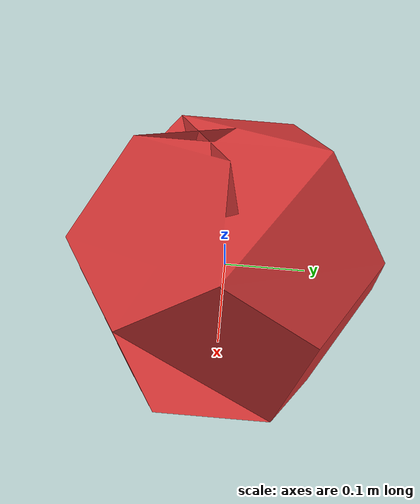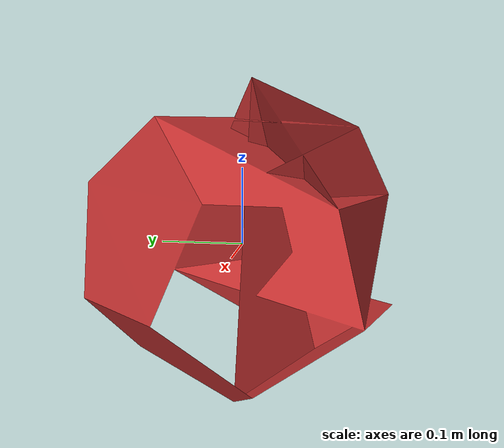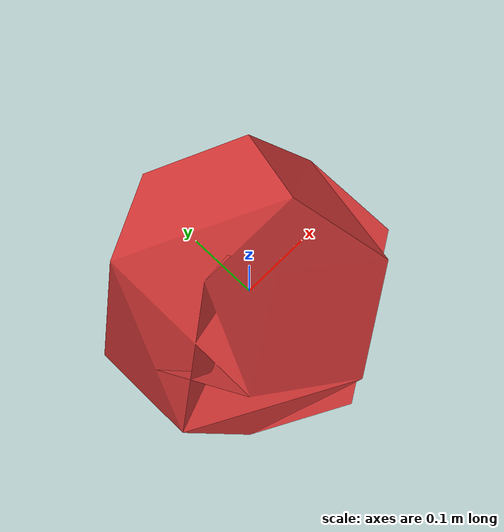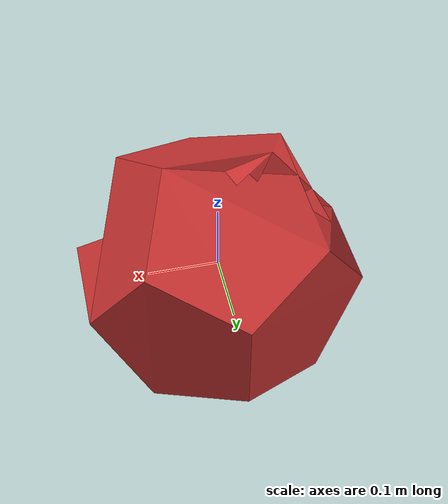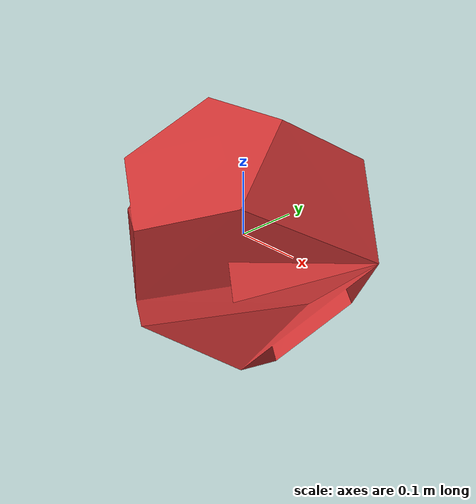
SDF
<?xml version="1.0"?>
<sdf version="1.7">
  <model name="dodecahedron_variant">
    <link name="dodecahedron_variant_link">
      <inertial>
        <mass>1.5</mass>
        <inertia>
          <ixx>0.096</ixx>
          <iyy>0.096</iyy>
          <izz>0.096</izz>
          <ixy>0.0</ixy>
          <ixz>0.0</ixz>
          <iyz>0.0</iyz>
        </inertia>
      </inertial>
      <visual name="dodecahedron_variant_visual">
        <geometry>
          <mesh>
            <uri>dodecahedron.obj</uri>
            <scale>0.12 0.12 0.12</scale>
          </mesh>
        </geometry>
        <material>
          <diffuse>0.8 0.2 0.2 1</diffuse>
          <ambient>0.3 0.1 0.1 1</ambient>
        </material>
      </visual>
    </link>
  </model>
</sdf>
